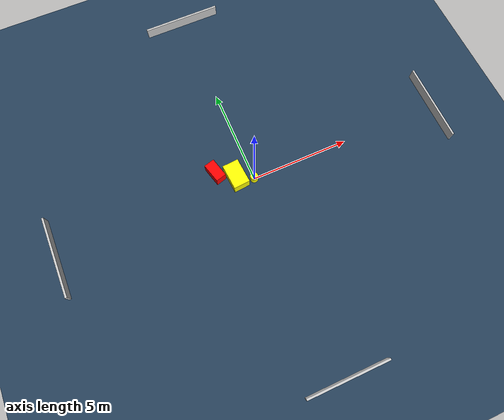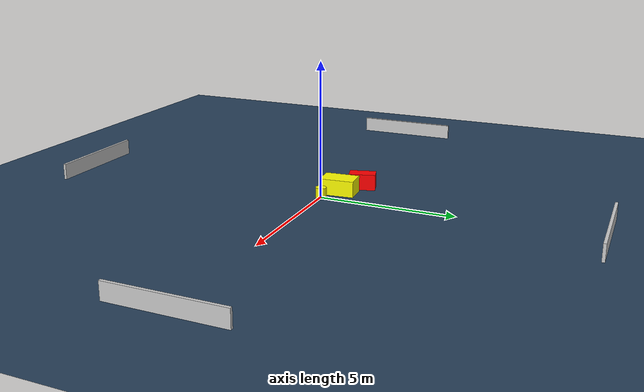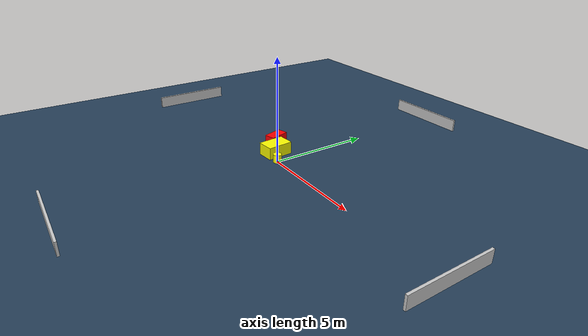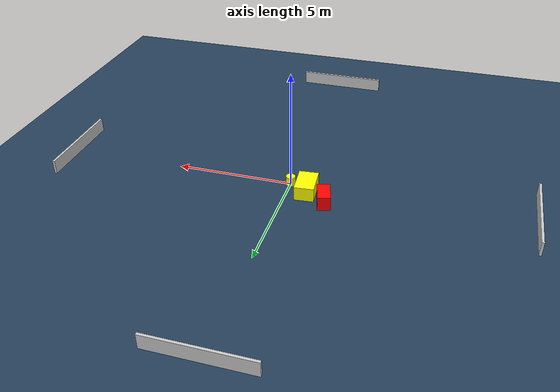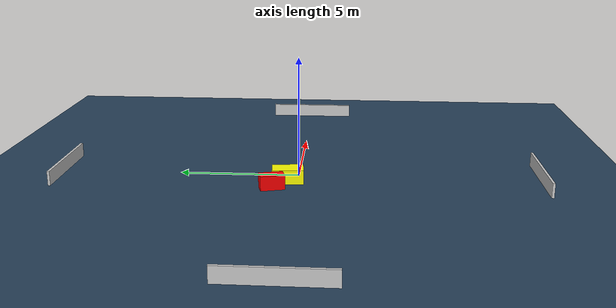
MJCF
<?xml version="1.0" ?>
<mujoco model="generated_environment">
  <option timestep="0.01" integrator="RK4" cone="elliptic"/>
  <default>
    <geom density="1"/>
  </default>
  <asset>
    <texture builtin="gradient" height="3072" name="skybox" rgb1="0.3 0.5 0.7" rgb2="0 0 0" type="skybox" width="512"/>
    <texture builtin="checker" height="300" name="groundplane" rgb1="0.2 0.3 0.4" rgb2="0.1 0.2 0.3" type="2d" width="300"/>
    <material name="groundplane" reflectance="0.2" texrepeat="5 5" texture="groundplane"/>
  </asset>
  <worldbody>
    <light dir="0 0 -1" directional="true" pos="0 0 1.5"/>
    <geom condim="3" friction="0.5 0.005 0.001" material="groundplane" name="floor" pos="0 0 0" size="0 0 0.05" type="plane"/>
    <body name="walls">
      <geom name="wall_1" condim="4" pos="-10.0 0.0 0.3" rgba="0.800000011920929 0.800000011920929 0.800000011920929 1.0" size="0.05 2.0 0.3" type="box"/>
      <geom name="wall_2" condim="4" pos="10.0 0.0 0.3" rgba="0.800000011920929 0.800000011920929 0.800000011920929 1.0" size="0.05 2.0 0.3" type="box"/>
      <geom name="wall_3" condim="4" pos="0.0 -10.0 0.3" rgba="0.800000011920929 0.800000011920929 0.800000011920929 1.0" size="2.0 0.05 0.3" type="box"/>
      <geom name="wall_4" condim="4" pos="0.0 10.0 0.3" rgba="0.800000011920929 0.800000011920929 0.800000011920929 1.0" size="2.0 0.05 0.3" type="box"/>
    </body>
    <body name="robot">
      <joint name="joint_x" type="slide" pos="0 0 0" axis="1 0 0"/>
      <joint name="joint_y" type="slide" pos="0 0 0" axis="0 1 0"/>
      <geom name="robot" type="cylinder" pos="0.0 0.0 0.2" size="0.2 0.2 0.0" mass="5.0" friction="1.0 0.005 0.0001" condim="4" rgba="1.0 1.0 0.0 1.0"/>
    </body>
    <body name="obstacle_1_movable">
      <geom name="obstacle_1_movable" condim="4" pos="-0.787634316866976 0.40355578484669896 0.3" euler="0 0 4.529582586896859" friction="0.0 0.005 0.001" rgba="1.0 1.0 0.0 1.0" size="0.4107082705017332 0.6400737479835443 0.3" type="box" mass="0.1"/>
      <joint type="free"/>
    </body>
    <body name="obstacle_2_static">
      <geom name="obstacle_2_static" condim="4" pos="-1.6541385972581955 0.9795051090348562 0.3" euler="0 0 285.30414437392005" friction="0.0 0.005 0.001" rgba="1.0 0.0 0.0 1.0" size="0.49546314859965623 0.2697085955449288 0.3" type="box"/>
    </body>
  </worldbody>
  <actuator>
    <motor name="actuator_x" joint="joint_x" gear="1" ctrlrange="-1 1"/>
    <motor name="actuator_y" joint="joint_y" gear="1" ctrlrange="-1 1"/>
  </actuator>
</mujoco>
